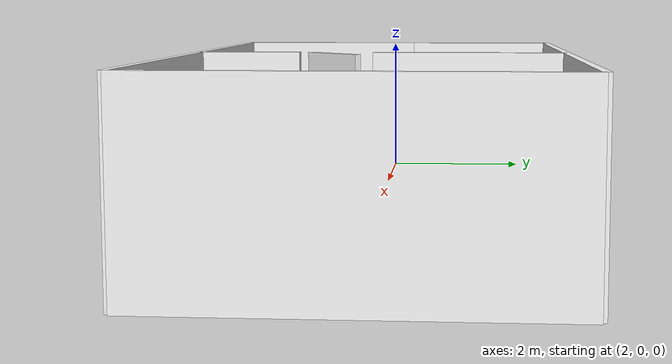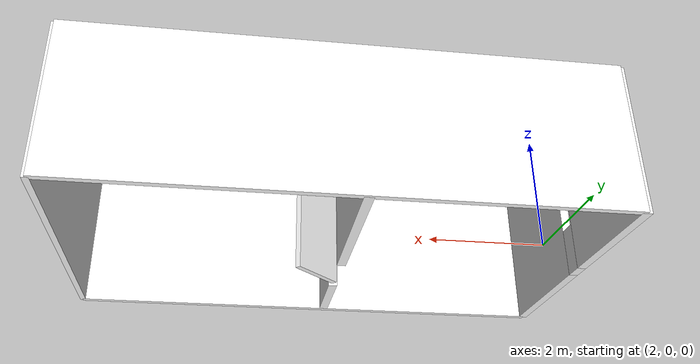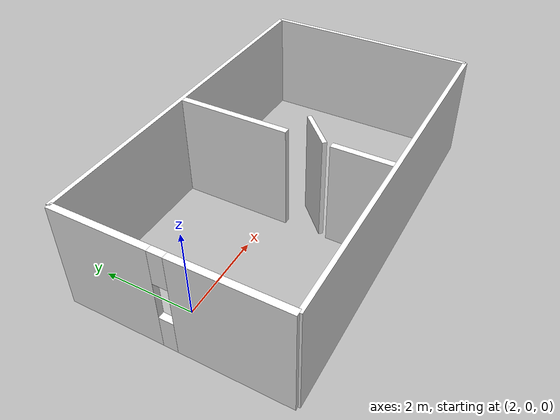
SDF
<?xml version='1.0' encoding='UTF-8'?>
<sdf version="1.10">
  <model name="realistic_room">

    <static>true</static>

    <link name="roof">
      <pose>5.75 0.0 2 0 0 0</pose>
      <collision name="roof_collision"><geometry><box><size>8.5 5.0 0.1</size></box></geometry></collision>
    </link>

    <link name="left_wall">
      <pose>5.75 2.5 0.75 0 0 0</pose>
      <collision name="left_wall_collision"><geometry><box><size>8.5 0.1 2.5</size></box></geometry></collision>
      <visual name="left_wall_visual"><geometry><box><size>8.5 0.1 2.5</size></box></geometry>
        <material><diffuse>1 1 1 1</diffuse><pbr><metal><albedo_map>/home/harshmodi/PX4-Autopilot/Tools/simulation/gz/models/realistic_room/materials/textures/brickwall.png</albedo_map></metal></pbr></material>
      </visual>
    </link>

    <link name="right_wall">
      <pose>5.75 -2.5 0.75 0 0 0</pose>
      <collision name="right_wall_collision"><geometry><box><size>8.5 0.1 2.5</size></box></geometry></collision>
      <visual name="right_wall_visual"><geometry><box><size>8.5 0.1 2.5</size></box></geometry>
        <material><diffuse>1 1 1 1</diffuse><pbr><metal><albedo_map>/home/harshmodi/PX4-Autopilot/Tools/simulation/gz/models/realistic_room/materials/textures/brickwall.png</albedo_map></metal></pbr></material>
      </visual>
    </link>

    <link name="front_wall">
      <pose>10.0 0.0 0.75 0 0 0</pose>
      <collision name="front_wall_collision"><geometry><box><size>0.1 5 2.5</size></box></geometry></collision>
      <visual name="front_wall_visual"><geometry><box><size>0.1 5 2.5</size></box></geometry>
        <material><diffuse>1 1 1 1</diffuse><pbr><metal><albedo_map>/home/harshmodi/PX4-Autopilot/Tools/simulation/gz/models/realistic_room/materials/textures/brickwall.png</albedo_map></metal></pbr></material>
      </visual>
    </link>

    <link name="wall1_left">
      <pose>1.5 1.3917 0.75 0 0 0</pose>
      <collision name="wall1_left_collision"><geometry><box><size>0.15 2.2166 2.5</size></box></geometry></collision>
      <visual name="wall1_left_visual"><geometry><box><size>0.15 2.2166 2.5</size></box></geometry>
        <material><diffuse>1 1 1 1</diffuse><pbr><metal><albedo_map>/home/harshmodi/PX4-Autopilot/Tools/simulation/gz/models/realistic_room/materials/textures/brickwall.png</albedo_map></metal></pbr></material>
      </visual>
    </link>

    <link name="wall1_right">
      <pose>1.5 -1.2733 0.75 0 0 0</pose>
      <collision name="wall1_right_collision"><geometry><box><size>0.15 2.4534 2.5</size></box></geometry></collision>
      <visual name="wall1_right_visual"><geometry><box><size>0.15 2.4534 2.5</size></box></geometry>
        <material><diffuse>1 1 1 1</diffuse><pbr><metal><albedo_map>/home/harshmodi/PX4-Autopilot/Tools/simulation/gz/models/realistic_room/materials/textures/brickwall.png</albedo_map></metal></pbr></material>
      </visual>
    </link>

    <link name="wall1_bottom">
      <pose>1.5 0.1184 -0.1 0 0 0</pose>
      <collision name="wall1_bottom_collision"><geometry><box><size>0.15 0.33 0.8</size></box></geometry></collision>
      <visual name="wall1_bottom_visual"><geometry><box><size>0.15 0.33 0.8</size></box></geometry>
        <material><diffuse>1 1 1 1</diffuse><pbr><metal><albedo_map>/home/harshmodi/PX4-Autopilot/Tools/simulation/gz/models/realistic_room/materials/textures/brickwall.png</albedo_map></metal></pbr></material>
      </visual>
    </link>

    <link name="wall1_top">
      <pose>1.5 0.1184 1.6 0 0 0</pose>
      <collision name="wall1_top_collision"><geometry><box><size>0.15 0.33 0.8</size></box></geometry></collision>
      <visual name="wall1_top_visual"><geometry><box><size>0.15 0.33 0.8</size></box></geometry>
        <material><diffuse>1 1 1 1</diffuse><pbr><metal><albedo_map>/home/harshmodi/PX4-Autopilot/Tools/simulation/gz/models/realistic_room/materials/textures/brickwall.png</albedo_map></metal></pbr></material>
      </visual>
    </link>

    <!-- =================================== TEMP EDITS =================================================== -->

    <!-- =================================== TEMP EDITS END =================================================== -->

    <link name="wall2_left">
      <pose>5.5 1.1908 0.75 0 0 0</pose>
      <collision name="wall2_left_collision"><geometry><box><size>0.15 2.6184 2.5</size></box></geometry></collision>
      <visual name="wall2_left_visual"><geometry><box><size>0.15 2.6184 2.5</size></box></geometry>
        <material><diffuse>1 1 1 1</diffuse><pbr><metal><albedo_map>/home/harshmodi/PX4-Autopilot/Tools/simulation/gz/models/realistic_room/materials/textures/brickwall.png</albedo_map></metal></pbr></material>
      </visual>
    </link>

    <link name="wall2_right">
      <pose>5.5 -1.8092 0.75 0 0 0</pose>
      <collision name="wall2_right_collision"><geometry><box><size>0.15 1.3816 2.5</size></box></geometry></collision>
      <visual name="wall2_right_visual"><geometry><box><size>0.15 1.3816 2.5</size></box></geometry>
        <material><diffuse>1 1 1 1</diffuse><pbr><metal><albedo_map>/home/harshmodi/PX4-Autopilot/Tools/simulation/gz/models/realistic_room/materials/textures/brickwall.png</albedo_map></metal></pbr></material>
      </visual>
    </link>

    <link name="door">
      <pose>5.85 -0.6184 0.75 0 0 0.78</pose>
      <collision name="door_collision"><geometry><box><size>1.0 0.1 2.5</size></box></geometry></collision>
      <visual name="door_visual"><geometry><box><size>1.0 0.1 2.5</size></box></geometry>
        <material><diffuse>1 1 1 1</diffuse><pbr><metal><albedo_map>/home/harshmodi/PX4-Autopilot/Tools/simulation/gz/models/realistic_room/materials/textures/door.png</albedo_map></metal></pbr></material>
      </visual>
    </link>

  </model>
</sdf>
